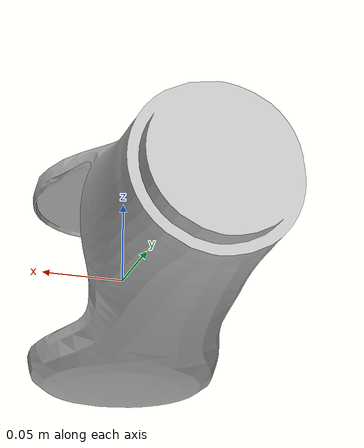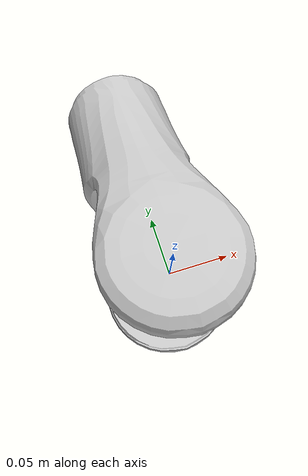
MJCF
<mujoco model="arm_l_link2">
  <default>
    <default class="visual">
      <geom group="2" type="mesh" contype="0" conaffinity="0"/>
    </default>
    <default class="collision">
      <geom group="3" type="mesh"/>
    </default>
  </default>
  <asset>
    <material name="material_arm_l_link2_0" specular="0.20000000000000004" shininess="1.0" rgba="0.76470588 0.76470588 0.76470588 1.0"/>
    <mesh file="arm_l_link2.obj"/>
  </asset>
  <worldbody>
    <body name="arm_l_link2">
      <geom material="material_arm_l_link2_0" mesh="arm_l_link2" class="visual"/>
      <geom mesh="arm_l_link2" class="collision"/>
    </body>
  </worldbody>
</mujoco>
